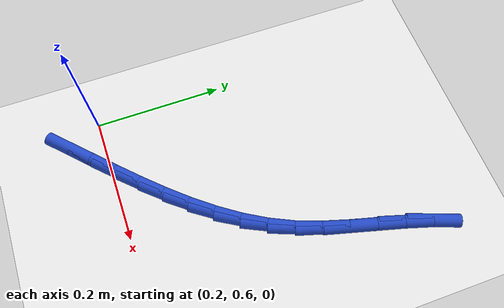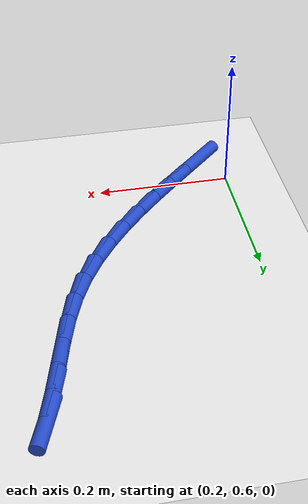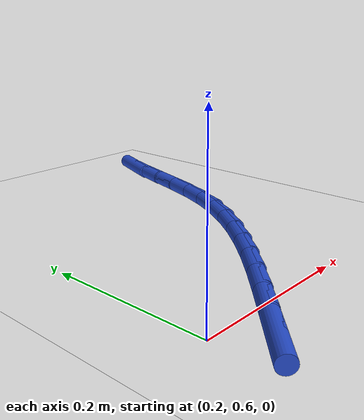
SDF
<sdf version="1.6">
 <world name="default">
  <model name="ground_plane">
   <static>1</static>
   <link name="link">
    <collision name="collision">
     <geometry><plane><normal>0 0 1</normal><size>100 100</size></plane></geometry>
     <surface><friction><ode><mu>100</mu><mu2>50</mu2></ode></friction></surface>
    </collision>
    <visual name="visual">
     <cast_shadows>0</cast_shadows>
     <geometry><plane><normal>0 0 1</normal><size>100 100</size></plane></geometry>
     <material>
      <script><uri>file://media/materials/scripts/gazebo.material</uri><name>Gazebo/WhiteGlow</name></script>
     </material>
    </visual>
   </link>
  </model>
  <model name="line">
   <link name="link_15">
    <pose>0.2306440643002238 0.5495040080740543 0.01 0 1.57 0.761188395505557</pose>
    <collision name="collision">
     <geometry><cylinder><radius>0.01</radius><length>0.08</length></cylinder></geometry>
    </collision>
    <visual name="visual">
     <material>
      <script><name>Gazebo/Blue</name><uri>file://media/materials/scripts/gazebo.material</uri></script>
     </material>
     <geometry><cylinder><radius>0.01</radius><length>0.08</length></cylinder></geometry>
    </visual>
   </link>
   <link name="link_16">
    <pose>0.26128926662130886 0.5787001814694853 0.01 0 1.57 0.7625955406162549</pose>
    <collision name="collision">
     <geometry><cylinder><radius>0.01</radius><length>0.08</length></cylinder></geometry>
    </collision>
    <visual name="visual">
     <material>
      <script><name>Gazebo/Blue</name><uri>file://media/materials/scripts/gazebo.material</uri></script>
     </material>
     <geometry><cylinder><radius>0.01</radius><length>0.08</length></cylinder></geometry>
    </visual>
   </link>
   <link name="link_17">
    <pose>0.2918601748905928 0.6079077474377944 0.01 0 1.57 0.7756290102910977</pose>
    <collision name="collision">
     <geometry><cylinder><radius>0.01</radius><length>0.08</length></cylinder></geometry>
    </collision>
    <visual name="visual">
     <material>
      <script><name>Gazebo/Blue</name><uri>file://media/materials/scripts/gazebo.material</uri></script>
     </material>
     <geometry><cylinder><radius>0.01</radius><length>0.08</length></cylinder></geometry>
    </visual>
   </link>
   <link name="link_18">
    <pose>0.3219040909398184 0.6373703170240466 0.01 0 1.57 0.8005931371648121</pose>
    <collision name="collision">
     <geometry><cylinder><radius>0.01</radius><length>0.08</length></cylinder></geometry>
    </collision>
    <visual name="visual">
     <material>
      <script><name>Gazebo/Blue</name><uri>file://media/materials/scripts/gazebo.material</uri></script>
     </material>
     <geometry><cylinder><radius>0.01</radius><length>0.08</length></cylinder></geometry>
    </visual>
   </link>
   <link name="link_19">
    <pose>0.35096831660072825 0.6673315012733059 0.01 0 1.57 0.8380033918524153</pose>
    <collision name="collision">
     <geometry><cylinder><radius>0.01</radius><length>0.08</length></cylinder></geometry>
    </collision>
    <visual name="visual">
     <material>
      <script><name>Gazebo/Blue</name><uri>file://media/materials/scripts/gazebo.material</uri></script>
     </material>
     <geometry><cylinder><radius>0.01</radius><length>0.08</length></cylinder></geometry>
    </visual>
   </link>
   <link name="link_20">
    <pose>0.3786001537050653 0.6980349112306367 0.01 0 1.57 0.8884942671636429</pose>
    <collision name="collision">
     <geometry><cylinder><radius>0.01</radius><length>0.08</length></cylinder></geometry>
    </collision>
    <visual name="visual">
     <material>
      <script><name>Gazebo/Blue</name><uri>file://media/materials/scripts/gazebo.material</uri></script>
     </material>
     <geometry><cylinder><radius>0.01</radius><length>0.08</length></cylinder></geometry>
    </visual>
   </link>
   <link name="link_21">
    <pose>0.4043469040845722 0.7297241579411039 0.01 0 1.57 0.9526497593310148</pose>
    <collision name="collision">
     <geometry><cylinder><radius>0.01</radius><length>0.08</length></cylinder></geometry>
    </collision>
    <visual name="visual">
     <material>
      <script><name>Gazebo/Blue</name><uri>file://media/materials/scripts/gazebo.material</uri></script>
     </material>
     <geometry><cylinder><radius>0.01</radius><length>0.08</length></cylinder></geometry>
    </visual>
   </link>
   <link name="link_22">
    <pose>0.4277558695709916 0.7626428524497715 0.01 0 1.57 1.0307311588188617</pose>
    <collision name="collision">
     <geometry><cylinder><radius>0.01</radius><length>0.08</length></cylinder></geometry>
    </collision>
    <visual name="visual">
     <material>
      <script><name>Gazebo/Blue</name><uri>file://media/materials/scripts/gazebo.material</uri></script>
     </material>
     <geometry><cylinder><radius>0.01</radius><length>0.08</length></cylinder></geometry>
    </visual>
   </link>
   <link name="link_23">
    <pose>0.4483743519960662 0.7970346058017039 0.01 0 1.57 1.1222995798715842</pose>
    <collision name="collision">
     <geometry><cylinder><radius>0.01</radius><length>0.08</length></cylinder></geometry>
    </collision>
    <visual name="visual">
     <material>
      <script><name>Gazebo/Blue</name><uri>file://media/materials/scripts/gazebo.material</uri></script>
     </material>
     <geometry><cylinder><radius>0.01</radius><length>0.08</length></cylinder></geometry>
    </visual>
   </link>
   <link name="link_24">
    <pose>0.4657497809316493 0.833142965838233 0.01 0 1.57 1.216325336079126</pose>
    <collision name="collision">
     <geometry><cylinder><radius>0.01</radius><length>0.08</length></cylinder></geometry>
    </collision>
    <visual name="visual">
     <material>
      <script><name>Gazebo/Blue</name><uri>file://media/materials/scripts/gazebo.material</uri></script>
     </material>
     <geometry><cylinder><radius>0.01</radius><length>0.08</length></cylinder></geometry>
    </visual>
   </link>
   <link name="link_25">
    <pose>0.47977569341693094 0.8710402320460279 0.01 0 1.57 1.2815588687121973</pose>
    <collision name="collision">
     <geometry><cylinder><radius>0.01</radius><length>0.08</length></cylinder></geometry>
    </collision>
    <visual name="visual">
     <material>
      <script><name>Gazebo/Blue</name><uri>file://media/materials/scripts/gazebo.material</uri></script>
     </material>
     <geometry><cylinder><radius>0.01</radius><length>0.08</length></cylinder></geometry>
    </visual>
   </link>
   <link name="link_26">
    <pose>0.4914452173575355 0.910254644206461 0.01 0 1.57 1.313227993498288</pose>
    <collision name="collision">
     <geometry><cylinder><radius>0.01</radius><length>0.08</length></cylinder></geometry>
    </collision>
    <visual name="visual">
     <material>
      <script><name>Gazebo/Blue</name><uri>file://media/materials/scripts/gazebo.material</uri></script>
     </material>
     <geometry><cylinder><radius>0.01</radius><length>0.08</length></cylinder></geometry>
    </visual>
   </link>
   <link name="link_27">
    <pose>0.5019693517239366 0.9502066430358587 0.01 0 1.57 1.3126689691735742</pose>
    <collision name="collision">
     <geometry><cylinder><radius>0.01</radius><length>0.08</length></cylinder></geometry>
    </collision>
    <visual name="visual">
     <material>
      <script><name>Gazebo/Blue</name><uri>file://media/materials/scripts/gazebo.material</uri></script>
     </material>
     <geometry><cylinder><radius>0.01</radius><length>0.08</length></cylinder></geometry>
    </visual>
   </link>
   <link name="link_28">
    <pose>0.5125590954866084 0.990316669250548 0.01 0 1.57 1.2802689575430162</pose>
    <collision name="collision">
     <geometry><cylinder><radius>0.01</radius><length>0.08</length></cylinder></geometry>
    </collision>
    <visual name="visual">
     <material>
      <script><name>Gazebo/Blue</name><uri>file://media/materials/scripts/gazebo.material</uri></script>
     </material>
     <geometry><cylinder><radius>0.01</radius><length>0.08</length></cylinder></geometry>
    </visual>
   </link>
   <link name="link_29">
    <pose>0.5244254476160246 1.0300051635668557 0.01 0 1.57 1.2155159129956474</pose>
    <collision name="collision">
     <geometry><cylinder><radius>0.01</radius><length>0.08</length></cylinder></geometry>
    </collision>
    <visual name="visual">
     <material>
      <script><name>Gazebo/Blue</name><uri>file://media/materials/scripts/gazebo.material</uri></script>
     </material>
     <geometry><cylinder><radius>0.01</radius><length>0.08</length></cylinder></geometry>
    </visual>
   </link>
  </model>
 </world>
</sdf>
